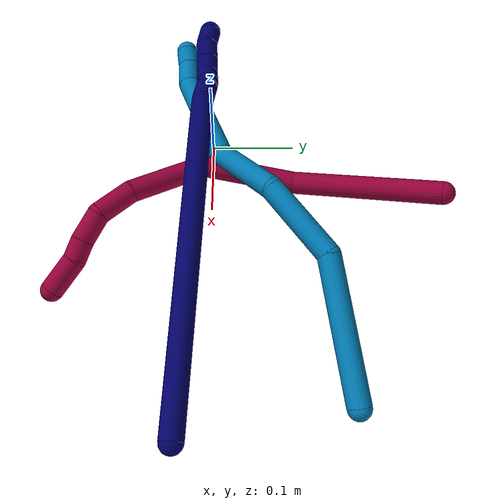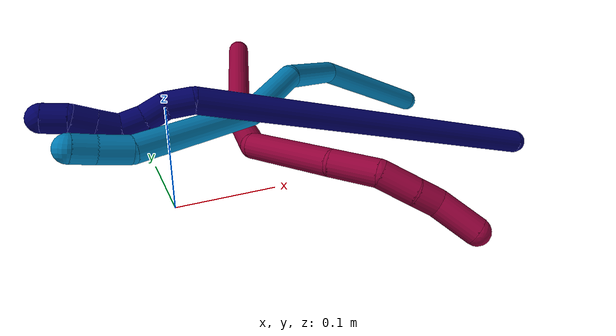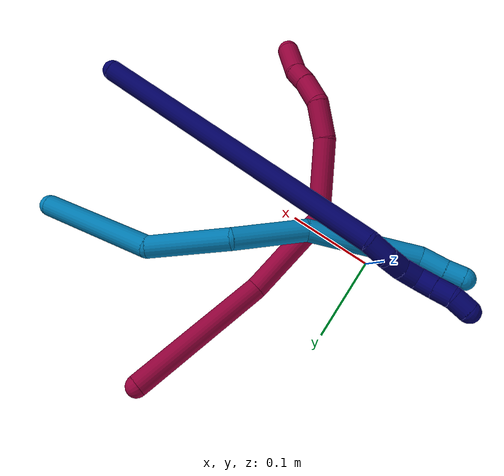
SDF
<sdf version="1.7">
 <world name="default">
  <model name="photoneo_s_sensor">
   <static>1</static>
   <pose>0 0 2 1.57079 1.57079 3.14159</pose>
   <link name="link">
    <inertial><mass>0.1</mass></inertial>
    <sensor name="sensor" type="depth">
     <update_rate>30</update_rate>
     <camera>
      <horizontal_fov>1.22</horizontal_fov>
      <image><width>1920</width><height>1200</height><format>B8G8R8</format></image>
      <clip><near>0.1</near><far>4</far></clip>
      <depth_camera><output>points</output></depth_camera>
     </camera>
     <plugin name="camera_plugin" filename="libgazebo_ros_depth_camera.so">
      <baseline>0.2</baseline>
      <alwaysOn>1</alwaysOn>
      <updateRate>0.0</updateRate>
      <cameraName>camera_ir</cameraName>
      <imageTopicName>/camera/color/image_raw</imageTopicName>
      <cameraInfoTopicName>/camera/color/camera_info</cameraInfoTopicName>
      <depthImageTopicName>/camera/depth/image_raw</depthImageTopicName>
      <depthImageCameraInfoTopicName>/camera/depth/camera_info</depthImageCameraInfoTopicName>
      <pointCloudTopicName>/camera/depth/points</pointCloudTopicName>
      <frameName>fr_optical</frameName>
      <pointCloudCutoff>0.1</pointCloudCutoff>
      <pointCloudCutoffMax>2.0</pointCloudCutoffMax>
      <distortionK1>0</distortionK1>
      <distortionK2>0</distortionK2>
      <distortionK3>0</distortionK3>
      <distortionT1>0</distortionT1>
      <distortionT2>0</distortionT2>
      <CxPrime>0</CxPrime>
      <Cx>0</Cx>
      <Cy>0</Cy>
      <focalLength>0</focalLength>
      <hackBaseline>0</hackBaseline>
     </plugin>
    </sensor>
   </link>
  </model>
  <model name="bin">
   <static>1</static>
   <link name="bottom">
    <collision name="collision-bottom">
     <pose>0 0 -0.01 0 -0 0</pose>
     <geometry><box><size>0.8 0.6 0.02</size></box></geometry>
     <surface>
      <friction><ode><mu>100</mu><mu2>100</mu2></ode></friction>
      <contact><collide_bitmask>65535</collide_bitmask></contact>
     </surface>
    </collision>
   </link>
   <link name="west_wall">
    <collision name="collision-west_wall">
     <pose>-0.41 0 0.1 0 -0 0</pose>
     <geometry><box><size>0.02 0.6 0.2</size></box></geometry>
     <surface>
      <friction><ode><mu>100</mu><mu2>100</mu2></ode></friction>
      <contact><collide_bitmask>65535</collide_bitmask></contact>
     </surface>
    </collision>
   </link>
   <link name="east_wall">
    <collision name="collision-east_wall">
     <pose>0.41 0 0.1 0 -0 0</pose>
     <geometry><box><size>0.02 0.6 0.2</size></box></geometry>
     <surface>
      <friction><ode><mu>100</mu><mu2>100</mu2></ode></friction>
      <contact><collide_bitmask>65535</collide_bitmask></contact>
     </surface>
    </collision>
   </link>
   <link name="south_wall">
    <collision name="collision-south_wall">
     <pose>0 -0.31 0.1 0 -0 0</pose>
     <geometry><box><size>0.8 0.02 0.2</size></box></geometry>
     <surface>
      <friction><ode><mu>100</mu><mu2>100</mu2></ode></friction>
      <contact><collide_bitmask>65535</collide_bitmask></contact>
     </surface>
    </collision>
   </link>
   <link name="north_wall">
    <collision name="collision-north_wall">
     <pose>0 0.31 0.1 0 -0 0</pose>
     <geometry><box><size>0.8 0.02 0.2</size></box></geometry>
     <surface>
      <friction><ode><mu>100</mu><mu2>100</mu2></ode></friction>
      <contact><collide_bitmask>65535</collide_bitmask></contact>
     </surface>
    </collision>
   </link>
  </model>
  <model name="7">
   <static>0</static>
   <link name="7">
    <collision name="collision-cylinder-e_1_1_4">
     <pose>-0.116709 -0.007064 -0.143538 3.09242 -0.682077 -3.00323</pose>
     <geometry><cylinder><radius>0.0125</radius><length>0.370265</length></cylinder></geometry>
     <surface>
      <friction><ode><mu>1.16</mu><mu2>1.16</mu2><slip1>0</slip1><slip2>0</slip2></ode></friction>
      <contact><ode><kp>1e+06</kp><kd>1</kd><max_vel>0</max_vel><min_depth>0.001</min_depth></ode></contact>
     </surface>
    </collision>
    <visual name="visual-cylinder-e_1_1_4">
     <pose>-0.116709 -0.007064 -0.143538 3.09242 -0.682077 -3.00323</pose>
     <geometry><cylinder><radius>0.0125</radius><length>0.370265</length></cylinder></geometry>
     <material><ambient>0.003922 0 0.403922 1</ambient></material>
    </visual>
    <collision name="collision-cylinder-e_2_4_5">
     <pose>-0.237649 -0.012713 -0.29876 -3.02107 -0.345123 2.47508</pose>
     <geometry><cylinder><radius>0.0125</radius><length>0.025011</length></cylinder></geometry>
     <surface>
      <friction><ode><mu>1.16</mu><mu2>1.16</mu2><slip1>0</slip1><slip2>0</slip2></ode></friction>
      <contact><ode><kp>1e+06</kp><kd>1</kd><max_vel>0</max_vel><min_depth>0.001</min_depth></ode></contact>
     </surface>
    </collision>
    <visual name="visual-cylinder-e_2_4_5">
     <pose>-0.237649 -0.012713 -0.29876 -3.02107 -0.345123 2.47508</pose>
     <geometry><cylinder><radius>0.0125</radius><length>0.025011</length></cylinder></geometry>
     <material><ambient>0.003922 0 0.403922 1</ambient></material>
    </visual>
    <collision name="collision-cylinder-e_3_5_6">
     <pose>-0.24162 -0.010613 -0.32122 -3.0781 0.023998 -0.722548</pose>
     <geometry><cylinder><radius>0.0125</radius><length>0.021604</length></cylinder></geometry>
     <surface>
      <friction><ode><mu>1.16</mu><mu2>1.16</mu2><slip1>0</slip1><slip2>0</slip2></ode></friction>
      <contact><ode><kp>1e+06</kp><kd>1</kd><max_vel>0</max_vel><min_depth>0.001</min_depth></ode></contact>
     </surface>
    </collision>
    <visual name="visual-cylinder-e_3_5_6">
     <pose>-0.24162 -0.010613 -0.32122 -3.0781 0.023998 -0.722548</pose>
     <geometry><cylinder><radius>0.0125</radius><length>0.021604</length></cylinder></geometry>
     <material><ambient>0.003922 0 0.403922 1</ambient></material>
    </visual>
    <collision name="collision-cylinder-e_4_6_7">
     <pose>-0.243378 -0.010673 -0.342586 3.07128 -0.187709 -2.42643</pose>
     <geometry><cylinder><radius>0.0125</radius><length>0.021611</length></cylinder></geometry>
     <surface>
      <friction><ode><mu>1.16</mu><mu2>1.16</mu2><slip1>0</slip1><slip2>0</slip2></ode></friction>
      <contact><ode><kp>1e+06</kp><kd>1</kd><max_vel>0</max_vel><min_depth>0.001</min_depth></ode></contact>
     </surface>
    </collision>
    <visual name="visual-cylinder-e_4_6_7">
     <pose>-0.243378 -0.010673 -0.342586 3.07128 -0.187709 -2.42643</pose>
     <geometry><cylinder><radius>0.0125</radius><length>0.021611</length></cylinder></geometry>
     <material><ambient>0.003922 0 0.403922 1</ambient></material>
    </visual>
    <collision name="collision-cylinder-e_5_7_8">
     <pose>-0.25255 -0.012732 -0.360412 2.96207 -0.771766 -2.70553</pose>
     <geometry><cylinder><radius>0.0125</radius><length>0.020522</length></cylinder></geometry>
     <surface>
      <friction><ode><mu>1.16</mu><mu2>1.16</mu2><slip1>0</slip1><slip2>0</slip2></ode></friction>
      <contact><ode><kp>1e+06</kp><kd>1</kd><max_vel>0</max_vel><min_depth>0.001</min_depth></ode></contact>
     </surface>
    </collision>
    <visual name="visual-cylinder-e_5_7_8">
     <pose>-0.25255 -0.012732 -0.360412 2.96207 -0.771766 -2.70553</pose>
     <geometry><cylinder><radius>0.0125</radius><length>0.020522</length></cylinder></geometry>
     <material><ambient>0.003922 0 0.403922 1</ambient></material>
    </visual>
    <collision name="collision-cylinder-e_6_8_9">
     <pose>-0.266876 -0.015542 -0.374559 2.9284 -0.792342 -2.6407</pose>
     <geometry><cylinder><radius>0.0125</radius><length>0.020142</length></cylinder></geometry>
     <surface>
      <friction><ode><mu>1.16</mu><mu2>1.16</mu2><slip1>0</slip1><slip2>0</slip2></ode></friction>
      <contact><ode><kp>1e+06</kp><kd>1</kd><max_vel>0</max_vel><min_depth>0.001</min_depth></ode></contact>
     </surface>
    </collision>
    <visual name="visual-cylinder-e_6_8_9">
     <pose>-0.266876 -0.015542 -0.374559 2.9284 -0.792342 -2.6407</pose>
     <geometry><cylinder><radius>0.0125</radius><length>0.020142</length></cylinder></geometry>
     <material><ambient>0.003922 0 0.403922 1</ambient></material>
    </visual>
    <collision name="collision-cylinder-e_7_9_2">
     <pose>-0.279572 -0.015941 -0.390239 -3.01718 -0.558726 2.71396</pose>
     <geometry><cylinder><radius>0.0125</radius><length>0.020844</length></cylinder></geometry>
     <surface>
      <friction><ode><mu>1.16</mu><mu2>1.16</mu2><slip1>0</slip1><slip2>0</slip2></ode></friction>
      <contact><ode><kp>1e+06</kp><kd>1</kd><max_vel>0</max_vel><min_depth>0.001</min_depth></ode></contact>
     </surface>
    </collision>
    <visual name="visual-cylinder-e_7_9_2">
     <pose>-0.279572 -0.015941 -0.390239 -3.01718 -0.558726 2.71396</pose>
     <geometry><cylinder><radius>0.0125</radius><length>0.020844</length></cylinder></geometry>
     <material><ambient>0.003922 0 0.403922 1</ambient></material>
    </visual>
    <collision name="collision-sphere-2">
     <pose>-0.285097 -0.014845 -0.399008 0 -0 0</pose>
     <geometry><sphere><radius>0.0125</radius></sphere></geometry>
     <surface>
      <friction><ode><mu>1.16</mu><mu2>1.16</mu2><slip1>0</slip1><slip2>0</slip2></ode></friction>
      <contact><ode><kp>1e+06</kp><kd>1</kd><max_vel>0</max_vel><min_depth>0.001</min_depth></ode></contact>
     </surface>
    </collision>
    <visual name="visual-sphere-2">
     <pose>-0.285097 -0.014845 -0.399008 0 -0 0</pose>
     <geometry><sphere><radius>0.0125</radius></sphere></geometry>
     <material><ambient>0.003922 0 0.403922 1</ambient></material>
    </visual>
    <collision name="collision-sphere-9">
     <pose>-0.274047 -0.017038 -0.38147 0 -0 0</pose>
     <geometry><sphere><radius>0.0125</radius></sphere></geometry>
     <surface>
      <friction><ode><mu>1.16</mu><mu2>1.16</mu2><slip1>0</slip1><slip2>0</slip2></ode></friction>
      <contact><ode><kp>1e+06</kp><kd>1</kd><max_vel>0</max_vel><min_depth>0.001</min_depth></ode></contact>
     </surface>
    </collision>
    <visual name="visual-sphere-9">
     <pose>-0.274047 -0.017038 -0.38147 0 -0 0</pose>
     <geometry><sphere><radius>0.0125</radius></sphere></geometry>
     <material><ambient>0.003922 0 0.403922 1</ambient></material>
    </visual>
    <collision name="collision-sphere-4">
     <pose>-0.233418 -0.014128 -0.287077 0 -0 0</pose>
     <geometry><sphere><radius>0.0125</radius></sphere></geometry>
     <surface>
      <friction><ode><mu>1.16</mu><mu2>1.16</mu2><slip1>0</slip1><slip2>0</slip2></ode></friction>
      <contact><ode><kp>1e+06</kp><kd>1</kd><max_vel>0</max_vel><min_depth>0.001</min_depth></ode></contact>
     </surface>
    </collision>
    <visual name="visual-sphere-4">
     <pose>-0.233418 -0.014128 -0.287077 0 -0 0</pose>
     <geometry><sphere><radius>0.0125</radius></sphere></geometry>
     <material><ambient>0.003922 0 0.403922 1</ambient></material>
    </visual>
    <collision name="collision-sphere-1">
     <geometry><sphere><radius>0.0125</radius></sphere></geometry>
     <surface>
      <friction><ode><mu>1.16</mu><mu2>1.16</mu2><slip1>0</slip1><slip2>0</slip2></ode></friction>
      <contact><ode><kp>1e+06</kp><kd>1</kd><max_vel>0</max_vel><min_depth>0.001</min_depth></ode></contact>
     </surface>
    </collision>
    <visual name="visual-sphere-1">
     <geometry><sphere><radius>0.0125</radius></sphere></geometry>
     <material><ambient>0.003922 0 0.403922 1</ambient></material>
    </visual>
    <collision name="collision-sphere-8">
     <pose>-0.259706 -0.014046 -0.367647 0 -0 0</pose>
     <geometry><sphere><radius>0.0125</radius></sphere></geometry>
     <surface>
      <friction><ode><mu>1.16</mu><mu2>1.16</mu2><slip1>0</slip1><slip2>0</slip2></ode></friction>
      <contact><ode><kp>1e+06</kp><kd>1</kd><max_vel>0</max_vel><min_depth>0.001</min_depth></ode></contact>
     </surface>
    </collision>
    <visual name="visual-sphere-8">
     <pose>-0.259706 -0.014046 -0.367647 0 -0 0</pose>
     <geometry><sphere><radius>0.0125</radius></sphere></geometry>
     <material><ambient>0.003922 0 0.403922 1</ambient></material>
    </visual>
    <collision name="collision-sphere-5">
     <pose>-0.24188 -0.011298 -0.310443 0 -0 0</pose>
     <geometry><sphere><radius>0.0125</radius></sphere></geometry>
     <surface>
      <friction><ode><mu>1.16</mu><mu2>1.16</mu2><slip1>0</slip1><slip2>0</slip2></ode></friction>
      <contact><ode><kp>1e+06</kp><kd>1</kd><max_vel>0</max_vel><min_depth>0.001</min_depth></ode></contact>
     </surface>
    </collision>
    <visual name="visual-sphere-5">
     <pose>-0.24188 -0.011298 -0.310443 0 -0 0</pose>
     <geometry><sphere><radius>0.0125</radius></sphere></geometry>
     <material><ambient>0.003922 0 0.403922 1</ambient></material>
    </visual>
    <collision name="collision-sphere-6">
     <pose>-0.241361 -0.009928 -0.331997 0 -0 0</pose>
     <geometry><sphere><radius>0.0125</radius></sphere></geometry>
     <surface>
      <friction><ode><mu>1.16</mu><mu2>1.16</mu2><slip1>0</slip1><slip2>0</slip2></ode></friction>
      <contact><ode><kp>1e+06</kp><kd>1</kd><max_vel>0</max_vel><min_depth>0.001</min_depth></ode></contact>
     </surface>
    </collision>
    <visual name="visual-sphere-6">
     <pose>-0.241361 -0.009928 -0.331997 0 -0 0</pose>
     <geometry><sphere><radius>0.0125</radius></sphere></geometry>
     <material><ambient>0.003922 0 0.403922 1</ambient></material>
    </visual>
    <collision name="collision-sphere-7">
     <pose>-0.245394 -0.011419 -0.353176 0 -0 0</pose>
     <geometry><sphere><radius>0.0125</radius></sphere></geometry>
     <surface>
      <friction><ode><mu>1.16</mu><mu2>1.16</mu2><slip1>0</slip1><slip2>0</slip2></ode></friction>
      <contact><ode><kp>1e+06</kp><kd>1</kd><max_vel>0</max_vel><min_depth>0.001</min_depth></ode></contact>
     </surface>
    </collision>
    <visual name="visual-sphere-7">
     <pose>-0.245394 -0.011419 -0.353176 0 -0 0</pose>
     <geometry><sphere><radius>0.0125</radius></sphere></geometry>
     <material><ambient>0.003922 0 0.403922 1</ambient></material>
    </visual>
    <inertial>
     <pose>-0.152045 -0.0086 -0.196076 0 -0 0</pose>
     <mass>0.5</mass>
     <inertia>
      <ixx>-0.003746</ixx>
      <ixy>0</ixy>
      <ixz>0</ixz>
      <iyy>0.003766</iyy>
      <iyz>0</iyz>
      <izz>0.002811</izz>
     </inertia>
    </inertial>
   </link>
   <pose>0.382171 -0.029939 0.012156 -0.453573 1.09971 -0.457897</pose>
  </model>
  <model name="8">
   <static>0</static>
   <link name="8">
    <collision name="collision-cylinder-e_1_1_4">
     <pose>0.012374 -0.004725 -0.082199 3.08418 0.149177 2.40783</pose>
     <geometry><cylinder><radius>0.0125</radius><length>0.166519</length></cylinder></geometry>
     <surface>
      <friction><ode><mu>1.16</mu><mu2>1.16</mu2><slip1>0</slip1><slip2>0</slip2></ode></friction>
      <contact><ode><kp>1e+06</kp><kd>1</kd><max_vel>0</max_vel><min_depth>0.001</min_depth></ode></contact>
     </surface>
    </collision>
    <visual name="visual-cylinder-e_1_1_4">
     <pose>0.012374 -0.004725 -0.082199 3.08418 0.149177 2.40783</pose>
     <geometry><cylinder><radius>0.0125</radius><length>0.166519</length></cylinder></geometry>
     <material><ambient>0.584314 0 0.227451 1</ambient></material>
    </visual>
    <collision name="collision-cylinder-e_2_4_5">
     <pose>0.021588 -0.028068 -0.2126 2.77299 -0.061086 -0.3249</pose>
     <geometry><cylinder><radius>0.0125</radius><length>0.103538</length></cylinder></geometry>
     <surface>
      <friction><ode><mu>1.16</mu><mu2>1.16</mu2><slip1>0</slip1><slip2>0</slip2></ode></friction>
      <contact><ode><kp>1e+06</kp><kd>1</kd><max_vel>0</max_vel><min_depth>0.001</min_depth></ode></contact>
     </surface>
    </collision>
    <visual name="visual-cylinder-e_2_4_5">
     <pose>0.021588 -0.028068 -0.2126 2.77299 -0.061086 -0.3249</pose>
     <geometry><cylinder><radius>0.0125</radius><length>0.103538</length></cylinder></geometry>
     <material><ambient>0.584314 0 0.227451 1</ambient></material>
    </visual>
    <collision name="collision-cylinder-e_3_5_6">
     <pose>0.031651 -0.081698 -0.286523 2.2044 0.29547 0.571875</pose>
     <geometry><cylinder><radius>0.0125</radius><length>0.090824</length></cylinder></geometry>
     <surface>
      <friction><ode><mu>1.16</mu><mu2>1.16</mu2><slip1>0</slip1><slip2>0</slip2></ode></friction>
      <contact><ode><kp>1e+06</kp><kd>1</kd><max_vel>0</max_vel><min_depth>0.001</min_depth></ode></contact>
     </surface>
    </collision>
    <visual name="visual-cylinder-e_3_5_6">
     <pose>0.031651 -0.081698 -0.286523 2.2044 0.29547 0.571875</pose>
     <geometry><cylinder><radius>0.0125</radius><length>0.090824</length></cylinder></geometry>
     <material><ambient>0.584314 0 0.227451 1</ambient></material>
    </visual>
    <collision name="collision-cylinder-e_4_6_7">
     <pose>0.055312 -0.134005 -0.320422 2.01243 0.499413 0.765606</pose>
     <geometry><cylinder><radius>0.0125</radius><length>0.043587</length></cylinder></geometry>
     <surface>
      <friction><ode><mu>1.16</mu><mu2>1.16</mu2><slip1>0</slip1><slip2>0</slip2></ode></friction>
      <contact><ode><kp>1e+06</kp><kd>1</kd><max_vel>0</max_vel><min_depth>0.001</min_depth></ode></contact>
     </surface>
    </collision>
    <visual name="visual-cylinder-e_4_6_7">
     <pose>0.055312 -0.134005 -0.320422 2.01243 0.499413 0.765606</pose>
     <geometry><cylinder><radius>0.0125</radius><length>0.043587</length></cylinder></geometry>
     <material><ambient>0.584314 0 0.227451 1</ambient></material>
    </visual>
    <collision name="collision-cylinder-e_5_7_8">
     <pose>0.079518 -0.160318 -0.331777 1.90962 0.963855 1.27276</pose>
     <geometry><cylinder><radius>0.0125</radius><length>0.033526</length></cylinder></geometry>
     <surface>
      <friction><ode><mu>1.16</mu><mu2>1.16</mu2><slip1>0</slip1><slip2>0</slip2></ode></friction>
      <contact><ode><kp>1e+06</kp><kd>1</kd><max_vel>0</max_vel><min_depth>0.001</min_depth></ode></contact>
     </surface>
    </collision>
    <visual name="visual-cylinder-e_5_7_8">
     <pose>0.079518 -0.160318 -0.331777 1.90962 0.963855 1.27276</pose>
     <geometry><cylinder><radius>0.0125</radius><length>0.033526</length></cylinder></geometry>
     <material><ambient>0.584314 0 0.227451 1</ambient></material>
    </visual>
    <collision name="collision-cylinder-e_6_8_9">
     <pose>0.102844 -0.174764 -0.33557 1.68362 1.05145 1.15224</pose>
     <geometry><cylinder><radius>0.0125</radius><length>0.022015</length></cylinder></geometry>
     <surface>
      <friction><ode><mu>1.16</mu><mu2>1.16</mu2><slip1>0</slip1><slip2>0</slip2></ode></friction>
      <contact><ode><kp>1e+06</kp><kd>1</kd><max_vel>0</max_vel><min_depth>0.001</min_depth></ode></contact>
     </surface>
    </collision>
    <visual name="visual-cylinder-e_6_8_9">
     <pose>0.102844 -0.174764 -0.33557 1.68362 1.05145 1.15224</pose>
     <geometry><cylinder><radius>0.0125</radius><length>0.022015</length></cylinder></geometry>
     <material><ambient>0.584314 0 0.227451 1</ambient></material>
    </visual>
    <collision name="collision-cylinder-e_7_9_2">
     <pose>0.12892 -0.188967 -0.343251 2.24879 0.9723 1.66967</pose>
     <geometry><cylinder><radius>0.0125</radius><length>0.03999</length></cylinder></geometry>
     <surface>
      <friction><ode><mu>1.16</mu><mu2>1.16</mu2><slip1>0</slip1><slip2>0</slip2></ode></friction>
      <contact><ode><kp>1e+06</kp><kd>1</kd><max_vel>0</max_vel><min_depth>0.001</min_depth></ode></contact>
     </surface>
    </collision>
    <visual name="visual-cylinder-e_7_9_2">
     <pose>0.12892 -0.188967 -0.343251 2.24879 0.9723 1.66967</pose>
     <geometry><cylinder><radius>0.0125</radius><length>0.03999</length></cylinder></geometry>
     <material><ambient>0.584314 0 0.227451 1</ambient></material>
    </visual>
    <collision name="collision-sphere-2">
     <pose>0.145439 -0.19774 -0.350317 0 -0 0</pose>
     <geometry><sphere><radius>0.0125</radius></sphere></geometry>
     <surface>
      <friction><ode><mu>1.16</mu><mu2>1.16</mu2><slip1>0</slip1><slip2>0</slip2></ode></friction>
      <contact><ode><kp>1e+06</kp><kd>1</kd><max_vel>0</max_vel><min_depth>0.001</min_depth></ode></contact>
     </surface>
    </collision>
    <visual name="visual-sphere-2">
     <pose>0.145439 -0.19774 -0.350317 0 -0 0</pose>
     <geometry><sphere><radius>0.0125</radius></sphere></geometry>
     <material><ambient>0.584314 0 0.227451 1</ambient></material>
    </visual>
    <collision name="collision-sphere-9">
     <pose>0.1124 -0.180193 -0.336185 0 -0 0</pose>
     <geometry><sphere><radius>0.0125</radius></sphere></geometry>
     <surface>
      <friction><ode><mu>1.16</mu><mu2>1.16</mu2><slip1>0</slip1><slip2>0</slip2></ode></friction>
      <contact><ode><kp>1e+06</kp><kd>1</kd><max_vel>0</max_vel><min_depth>0.001</min_depth></ode></contact>
     </surface>
    </collision>
    <visual name="visual-sphere-9">
     <pose>0.1124 -0.180193 -0.336185 0 -0 0</pose>
     <geometry><sphere><radius>0.0125</radius></sphere></geometry>
     <material><ambient>0.584314 0 0.227451 1</ambient></material>
    </visual>
    <collision name="collision-sphere-4">
     <pose>0.024749 -0.00945 -0.164399 0 -0 0</pose>
     <geometry><sphere><radius>0.0125</radius></sphere></geometry>
     <surface>
      <friction><ode><mu>1.16</mu><mu2>1.16</mu2><slip1>0</slip1><slip2>0</slip2></ode></friction>
      <contact><ode><kp>1e+06</kp><kd>1</kd><max_vel>0</max_vel><min_depth>0.001</min_depth></ode></contact>
     </surface>
    </collision>
    <visual name="visual-sphere-4">
     <pose>0.024749 -0.00945 -0.164399 0 -0 0</pose>
     <geometry><sphere><radius>0.0125</radius></sphere></geometry>
     <material><ambient>0.584314 0 0.227451 1</ambient></material>
    </visual>
    <collision name="collision-sphere-1">
     <geometry><sphere><radius>0.0125</radius></sphere></geometry>
     <surface>
      <friction><ode><mu>1.16</mu><mu2>1.16</mu2><slip1>0</slip1><slip2>0</slip2></ode></friction>
      <contact><ode><kp>1e+06</kp><kd>1</kd><max_vel>0</max_vel><min_depth>0.001</min_depth></ode></contact>
     </surface>
    </collision>
    <visual name="visual-sphere-1">
     <geometry><sphere><radius>0.0125</radius></sphere></geometry>
     <material><ambient>0.584314 0 0.227451 1</ambient></material>
    </visual>
    <collision name="collision-sphere-8">
     <pose>0.093288 -0.169336 -0.334955 0 -0 0</pose>
     <geometry><sphere><radius>0.0125</radius></sphere></geometry>
     <surface>
      <friction><ode><mu>1.16</mu><mu2>1.16</mu2><slip1>0</slip1><slip2>0</slip2></ode></friction>
      <contact><ode><kp>1e+06</kp><kd>1</kd><max_vel>0</max_vel><min_depth>0.001</min_depth></ode></contact>
     </surface>
    </collision>
    <visual name="visual-sphere-8">
     <pose>0.093288 -0.169336 -0.334955 0 -0 0</pose>
     <geometry><sphere><radius>0.0125</radius></sphere></geometry>
     <material><ambient>0.584314 0 0.227451 1</ambient></material>
    </visual>
    <collision name="collision-sphere-5">
     <pose>0.018428 -0.046686 -0.260802 0 -0 0</pose>
     <geometry><sphere><radius>0.0125</radius></sphere></geometry>
     <surface>
      <friction><ode><mu>1.16</mu><mu2>1.16</mu2><slip1>0</slip1><slip2>0</slip2></ode></friction>
      <contact><ode><kp>1e+06</kp><kd>1</kd><max_vel>0</max_vel><min_depth>0.001</min_depth></ode></contact>
     </surface>
    </collision>
    <visual name="visual-sphere-5">
     <pose>0.018428 -0.046686 -0.260802 0 -0 0</pose>
     <geometry><sphere><radius>0.0125</radius></sphere></geometry>
     <material><ambient>0.584314 0 0.227451 1</ambient></material>
    </visual>
    <collision name="collision-sphere-6">
     <pose>0.044875 -0.116709 -0.312245 0 -0 0</pose>
     <geometry><sphere><radius>0.0125</radius></sphere></geometry>
     <surface>
      <friction><ode><mu>1.16</mu><mu2>1.16</mu2><slip1>0</slip1><slip2>0</slip2></ode></friction>
      <contact><ode><kp>1e+06</kp><kd>1</kd><max_vel>0</max_vel><min_depth>0.001</min_depth></ode></contact>
     </surface>
    </collision>
    <visual name="visual-sphere-6">
     <pose>0.044875 -0.116709 -0.312245 0 -0 0</pose>
     <geometry><sphere><radius>0.0125</radius></sphere></geometry>
     <material><ambient>0.584314 0 0.227451 1</ambient></material>
    </visual>
    <collision name="collision-sphere-7">
     <pose>0.065749 -0.151301 -0.328599 0 -0 0</pose>
     <geometry><sphere><radius>0.0125</radius></sphere></geometry>
     <surface>
      <friction><ode><mu>1.16</mu><mu2>1.16</mu2><slip1>0</slip1><slip2>0</slip2></ode></friction>
      <contact><ode><kp>1e+06</kp><kd>1</kd><max_vel>0</max_vel><min_depth>0.001</min_depth></ode></contact>
     </surface>
    </collision>
    <visual name="visual-sphere-7">
     <pose>0.065749 -0.151301 -0.328599 0 -0 0</pose>
     <geometry><sphere><radius>0.0125</radius></sphere></geometry>
     <material><ambient>0.584314 0 0.227451 1</ambient></material>
    </visual>
    <inertial>
     <pose>0.039334 -0.067466 -0.215854 0 -0 0</pose>
     <mass>0.5</mass>
     <inertia><ixx>0.000149</ixx><ixy>0</ixy><ixz>0</ixz><iyy>0.000452</iyy><iyz>0</iyz><izz>7e-06</izz></inertia>
    </inertial>
   </link>
   <pose>0.144365 0.248638 0.081981 -1.29509 0.997839 -0.211497</pose>
  </model>
  <model name="9">
   <static>0</static>
   <link name="9">
    <collision name="collision-cylinder-e_1_1_4">
     <pose>-0.070656 -0.020856 -0.011912 2.08971 -1.24312 -1.77947</pose>
     <geometry><cylinder><radius>0.0125</radius><length>0.149253</length></cylinder></geometry>
     <surface>
      <friction><ode><mu>1.16</mu><mu2>1.16</mu2><slip1>0</slip1><slip2>0</slip2></ode></friction>
      <contact><ode><kp>1e+06</kp><kd>1</kd><max_vel>0</max_vel><min_depth>0.001</min_depth></ode></contact>
     </surface>
    </collision>
    <visual name="visual-cylinder-e_1_1_4">
     <pose>-0.070656 -0.020856 -0.011912 2.08971 -1.24312 -1.77947</pose>
     <geometry><cylinder><radius>0.0125</radius><length>0.149253</length></cylinder></geometry>
     <material><ambient>0 0.490196 0.709804 1</ambient></material>
    </visual>
    <collision name="collision-cylinder-e_2_4_5">
     <pose>-0.187063 -0.036805 -0.015973 -0.558758 -1.37113 0.460948</pose>
     <geometry><cylinder><radius>0.0125</radius><length>0.093357</length></cylinder></geometry>
     <surface>
      <friction><ode><mu>1.16</mu><mu2>1.16</mu2><slip1>0</slip1><slip2>0</slip2></ode></friction>
      <contact><ode><kp>1e+06</kp><kd>1</kd><max_vel>0</max_vel><min_depth>0.001</min_depth></ode></contact>
     </surface>
    </collision>
    <visual name="visual-cylinder-e_2_4_5">
     <pose>-0.187063 -0.036805 -0.015973 -0.558758 -1.37113 0.460948</pose>
     <geometry><cylinder><radius>0.0125</radius><length>0.093357</length></cylinder></geometry>
     <material><ambient>0 0.490196 0.709804 1</ambient></material>
    </visual>
    <collision name="collision-cylinder-e_3_5_6">
     <pose>-0.268104 -0.028299 0.013751 -0.163027 -1.00993 0.090254</pose>
     <geometry><cylinder><radius>0.0125</radius><length>0.08335</length></cylinder></geometry>
     <surface>
      <friction><ode><mu>1.16</mu><mu2>1.16</mu2><slip1>0</slip1><slip2>0</slip2></ode></friction>
      <contact><ode><kp>1e+06</kp><kd>1</kd><max_vel>0</max_vel><min_depth>0.001</min_depth></ode></contact>
     </surface>
    </collision>
    <visual name="visual-cylinder-e_3_5_6">
     <pose>-0.268104 -0.028299 0.013751 -0.163027 -1.00993 0.090254</pose>
     <geometry><cylinder><radius>0.0125</radius><length>0.08335</length></cylinder></geometry>
     <material><ambient>0 0.490196 0.709804 1</ambient></material>
    </visual>
    <collision name="collision-cylinder-e_4_6_7">
     <pose>-0.360809 -0.03974 0.054361 0.676395 -1.17448 -0.459893</pose>
     <geometry><cylinder><radius>0.0125</radius><length>0.124478</length></cylinder></geometry>
     <surface>
      <friction><ode><mu>1.16</mu><mu2>1.16</mu2><slip1>0</slip1><slip2>0</slip2></ode></friction>
      <contact><ode><kp>1e+06</kp><kd>1</kd><max_vel>0</max_vel><min_depth>0.001</min_depth></ode></contact>
     </surface>
    </collision>
    <visual name="visual-cylinder-e_4_6_7">
     <pose>-0.360809 -0.03974 0.054361 0.676395 -1.17448 -0.459893</pose>
     <geometry><cylinder><radius>0.0125</radius><length>0.124478</length></cylinder></geometry>
     <material><ambient>0 0.490196 0.709804 1</ambient></material>
    </visual>
    <collision name="collision-cylinder-e_5_7_8">
     <pose>-0.430918 -0.061297 0.073323 1.53611 -1.09619 -1.06558</pose>
     <geometry><cylinder><radius>0.0125</radius><length>0.028541</length></cylinder></geometry>
     <surface>
      <friction><ode><mu>1.16</mu><mu2>1.16</mu2><slip1>0</slip1><slip2>0</slip2></ode></friction>
      <contact><ode><kp>1e+06</kp><kd>1</kd><max_vel>0</max_vel><min_depth>0.001</min_depth></ode></contact>
     </surface>
    </collision>
    <visual name="visual-cylinder-e_5_7_8">
     <pose>-0.430918 -0.061297 0.073323 1.53611 -1.09619 -1.06558</pose>
     <geometry><cylinder><radius>0.0125</radius><length>0.028541</length></cylinder></geometry>
     <material><ambient>0 0.490196 0.709804 1</ambient></material>
    </visual>
    <collision name="collision-cylinder-e_6_8_2">
     <pose>-0.4534 -0.071636 0.073344 1.6244 -1.19813 -1.24854</pose>
     <geometry><cylinder><radius>0.0125</radius><length>0.02102</length></cylinder></geometry>
     <surface>
      <friction><ode><mu>1.16</mu><mu2>1.16</mu2><slip1>0</slip1><slip2>0</slip2></ode></friction>
      <contact><ode><kp>1e+06</kp><kd>1</kd><max_vel>0</max_vel><min_depth>0.001</min_depth></ode></contact>
     </surface>
    </collision>
    <visual name="visual-cylinder-e_6_8_2">
     <pose>-0.4534 -0.071636 0.073344 1.6244 -1.19813 -1.24854</pose>
     <geometry><cylinder><radius>0.0125</radius><length>0.02102</length></cylinder></geometry>
     <material><ambient>0 0.490196 0.709804 1</ambient></material>
    </visual>
    <collision name="collision-sphere-2">
     <pose>-0.463188 -0.075458 0.073139 0 -0 0</pose>
     <geometry><sphere><radius>0.0125</radius></sphere></geometry>
     <surface>
      <friction><ode><mu>1.16</mu><mu2>1.16</mu2><slip1>0</slip1><slip2>0</slip2></ode></friction>
      <contact><ode><kp>1e+06</kp><kd>1</kd><max_vel>0</max_vel><min_depth>0.001</min_depth></ode></contact>
     </surface>
    </collision>
    <visual name="visual-sphere-2">
     <pose>-0.463188 -0.075458 0.073139 0 -0 0</pose>
     <geometry><sphere><radius>0.0125</radius></sphere></geometry>
     <material><ambient>0 0.490196 0.709804 1</ambient></material>
    </visual>
    <collision name="collision-sphere-4">
     <pose>-0.141312 -0.041713 -0.023823 0 -0 0</pose>
     <geometry><sphere><radius>0.0125</radius></sphere></geometry>
     <surface>
      <friction><ode><mu>1.16</mu><mu2>1.16</mu2><slip1>0</slip1><slip2>0</slip2></ode></friction>
      <contact><ode><kp>1e+06</kp><kd>1</kd><max_vel>0</max_vel><min_depth>0.001</min_depth></ode></contact>
     </surface>
    </collision>
    <visual name="visual-sphere-4">
     <pose>-0.141312 -0.041713 -0.023823 0 -0 0</pose>
     <geometry><sphere><radius>0.0125</radius></sphere></geometry>
     <material><ambient>0 0.490196 0.709804 1</ambient></material>
    </visual>
    <collision name="collision-sphere-1">
     <geometry><sphere><radius>0.0125</radius></sphere></geometry>
     <surface>
      <friction><ode><mu>1.16</mu><mu2>1.16</mu2><slip1>0</slip1><slip2>0</slip2></ode></friction>
      <contact><ode><kp>1e+06</kp><kd>1</kd><max_vel>0</max_vel><min_depth>0.001</min_depth></ode></contact>
     </surface>
    </collision>
    <visual name="visual-sphere-1">
     <geometry><sphere><radius>0.0125</radius></sphere></geometry>
     <material><ambient>0 0.490196 0.709804 1</ambient></material>
    </visual>
    <collision name="collision-sphere-8">
     <pose>-0.443611 -0.067815 0.073549 0 -0 0</pose>
     <geometry><sphere><radius>0.0125</radius></sphere></geometry>
     <surface>
      <friction><ode><mu>1.16</mu><mu2>1.16</mu2><slip1>0</slip1><slip2>0</slip2></ode></friction>
      <contact><ode><kp>1e+06</kp><kd>1</kd><max_vel>0</max_vel><min_depth>0.001</min_depth></ode></contact>
     </surface>
    </collision>
    <visual name="visual-sphere-8">
     <pose>-0.443611 -0.067815 0.073549 0 -0 0</pose>
     <geometry><sphere><radius>0.0125</radius></sphere></geometry>
     <material><ambient>0 0.490196 0.709804 1</ambient></material>
    </visual>
    <collision name="collision-sphere-5">
     <pose>-0.232814 -0.031896 -0.008123 0 -0 0</pose>
     <geometry><sphere><radius>0.0125</radius></sphere></geometry>
     <surface>
      <friction><ode><mu>1.16</mu><mu2>1.16</mu2><slip1>0</slip1><slip2>0</slip2></ode></friction>
      <contact><ode><kp>1e+06</kp><kd>1</kd><max_vel>0</max_vel><min_depth>0.001</min_depth></ode></contact>
     </surface>
    </collision>
    <visual name="visual-sphere-5">
     <pose>-0.232814 -0.031896 -0.008123 0 -0 0</pose>
     <geometry><sphere><radius>0.0125</radius></sphere></geometry>
     <material><ambient>0 0.490196 0.709804 1</ambient></material>
    </visual>
    <collision name="collision-sphere-6">
     <pose>-0.303394 -0.024701 0.035625 0 -0 0</pose>
     <geometry><sphere><radius>0.0125</radius></sphere></geometry>
     <surface>
      <friction><ode><mu>1.16</mu><mu2>1.16</mu2><slip1>0</slip1><slip2>0</slip2></ode></friction>
      <contact><ode><kp>1e+06</kp><kd>1</kd><max_vel>0</max_vel><min_depth>0.001</min_depth></ode></contact>
     </surface>
    </collision>
    <visual name="visual-sphere-6">
     <pose>-0.303394 -0.024701 0.035625 0 -0 0</pose>
     <geometry><sphere><radius>0.0125</radius></sphere></geometry>
     <material><ambient>0 0.490196 0.709804 1</ambient></material>
    </visual>
    <collision name="collision-sphere-7">
     <pose>-0.418224 -0.05478 0.073097 0 -0 0</pose>
     <geometry><sphere><radius>0.0125</radius></sphere></geometry>
     <surface>
      <friction><ode><mu>1.16</mu><mu2>1.16</mu2><slip1>0</slip1><slip2>0</slip2></ode></friction>
      <contact><ode><kp>1e+06</kp><kd>1</kd><max_vel>0</max_vel><min_depth>0.001</min_depth></ode></contact>
     </surface>
    </collision>
    <visual name="visual-sphere-7">
     <pose>-0.418224 -0.05478 0.073097 0 -0 0</pose>
     <geometry><sphere><radius>0.0125</radius></sphere></geometry>
     <material><ambient>0 0.490196 0.709804 1</ambient></material>
    </visual>
    <inertial>
     <pose>-0.234196 -0.034219 0.016557 0 -0 0</pose>
     <mass>0.5</mass>
     <inertia>
      <ixx>-6.7e-05</ixx>
      <ixy>0</ixy>
      <ixz>0</ixz>
      <iyy>0.000424</iyy>
      <iyz>0</iyz>
      <izz>0.000653</izz>
     </inertia>
    </inertial>
   </link>
   <pose>0.3511 0.146654 0.012497 2.95378 0.345076 0.520013</pose>
  </model>
 </world>
</sdf>
